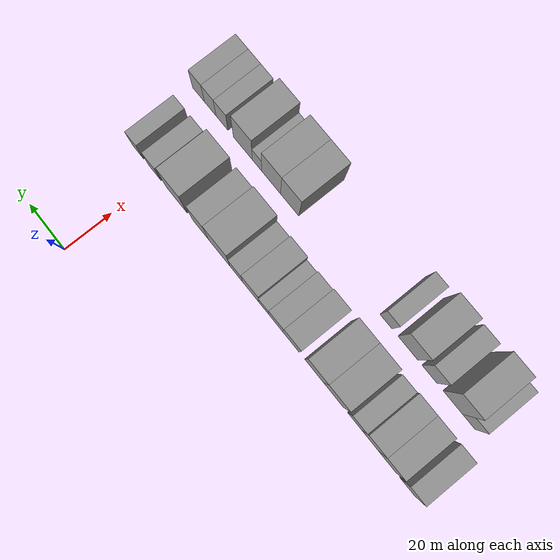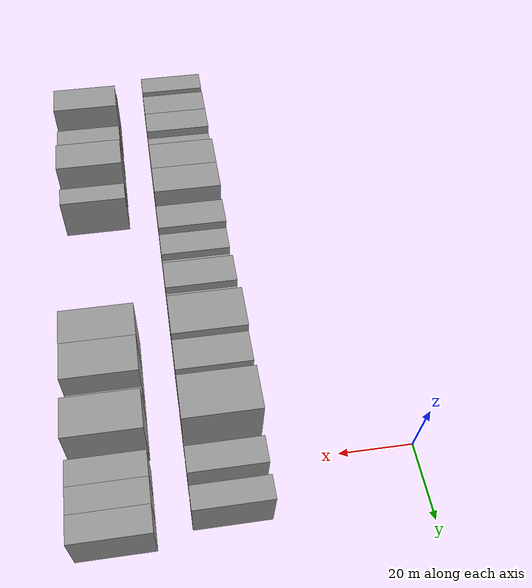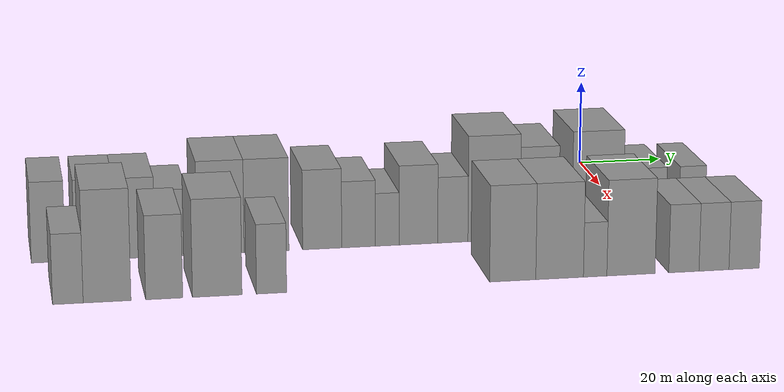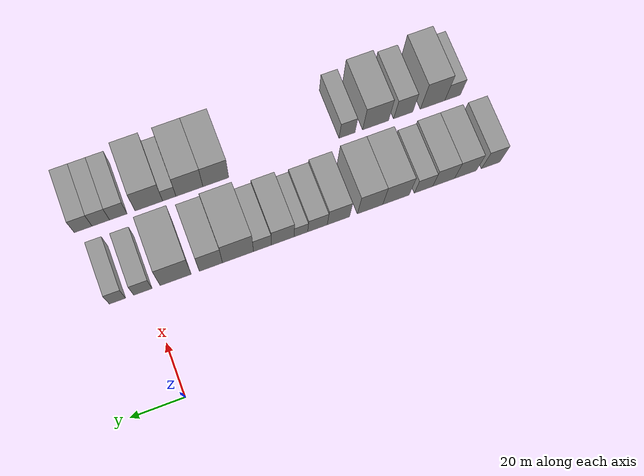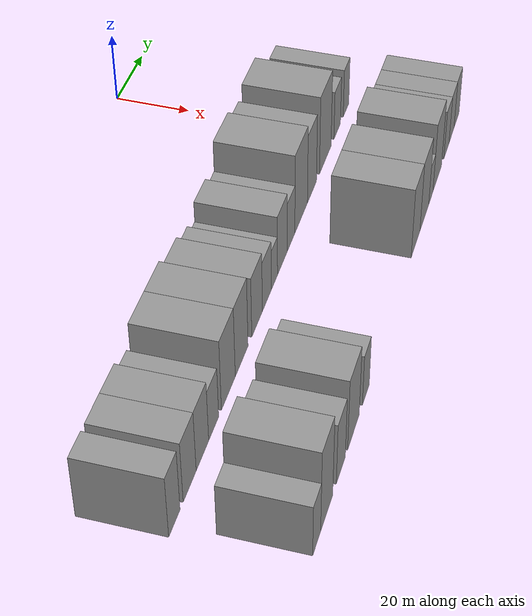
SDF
<sdf version="1.6">
 <world name="default">
  <model name="building_12">
   <static>1</static>
   <pose>50.0000 -131.5599 0 0.000000 0.000000 0.000000</pose>
   <link name="link">
    <pose>0 0 9.00 0 0 0</pose>
    <collision name="collision"><geometry><box><size>20.0000 7.2720 18.0000</size></box></geometry></collision>
    <visual name="visual">
     <cast_shadows>0</cast_shadows>
     <geometry><box><size>20.0000 7.2720 18.0000</size></box></geometry>
     <material>
      <script>
       <uri>model://grey_wall/materials/scripts</uri>
       <uri>model://grey_wall/materials/textures</uri>
       <name>vrc/grey_wall</name>
      </script>
     </material>
    </visual>
   </link>
  </model>
  <model name="building_13">
   <static>1</static>
   <pose>50.0000 -121.6003 0 0.000000 0.000000 0.000000</pose>
   <link name="link">
    <pose>0 0 9.00 0 0 0</pose>
    <collision name="collision"><geometry><box><size>20.0000 8.6473 18.0000</size></box></geometry></collision>
    <visual name="visual">
     <cast_shadows>0</cast_shadows>
     <geometry><box><size>20.0000 8.6473 18.0000</size></box></geometry>
     <material>
      <script>
       <uri>model://grey_wall/materials/scripts</uri>
       <uri>model://grey_wall/materials/textures</uri>
       <name>vrc/grey_wall</name>
      </script>
     </material>
    </visual>
   </link>
  </model>
  <model name="building_14">
   <static>1</static>
   <pose>50.0000 -112.9664 0 0.000000 0.000000 0.000000</pose>
   <link name="link">
    <pose>0 0 9.00 0 0 0</pose>
    <collision name="collision"><geometry><box><size>20.0000 8.6204 18.0000</size></box></geometry></collision>
    <visual name="visual">
     <cast_shadows>0</cast_shadows>
     <geometry><box><size>20.0000 8.6204 18.0000</size></box></geometry>
     <material>
      <script>
       <uri>model://grey_wall/materials/scripts</uri>
       <uri>model://grey_wall/materials/textures</uri>
       <name>vrc/grey_wall</name>
      </script>
     </material>
    </visual>
   </link>
  </model>
  <model name="building_15">
   <static>1</static>
   <pose>50.0000 -105.1115 0 0.000000 0.000000 0.000000</pose>
   <link name="link">
    <pose>0 0 7.50 0 0 0</pose>
    <collision name="collision"><geometry><box><size>20.0000 7.0894 15.0000</size></box></geometry></collision>
    <visual name="visual">
     <cast_shadows>0</cast_shadows>
     <geometry><box><size>20.0000 7.0894 15.0000</size></box></geometry>
     <material>
      <script>
       <uri>model://grey_wall/materials/scripts</uri>
       <uri>model://grey_wall/materials/textures</uri>
       <name>vrc/grey_wall</name>
      </script>
     </material>
    </visual>
   </link>
  </model>
  <model name="building_16">
   <static>1</static>
   <pose>50.0000 -94.4157 0 0.000000 0.000000 0.000000</pose>
   <link name="link">
    <pose>0 0 10.50 0 0 0</pose>
    <collision name="collision"><geometry><box><size>20.0000 10.3022 21.0000</size></box></geometry></collision>
    <visual name="visual">
     <cast_shadows>0</cast_shadows>
     <geometry><box><size>20.0000 10.3022 21.0000</size></box></geometry>
     <material>
      <script>
       <uri>model://grey_wall/materials/scripts</uri>
       <uri>model://grey_wall/materials/textures</uri>
       <name>vrc/grey_wall</name>
      </script>
     </material>
    </visual>
   </link>
  </model>
  <model name="building_17">
   <static>1</static>
   <pose>50.0000 -84.3508 0 0.000000 0.000000 0.000000</pose>
   <link name="link">
    <pose>0 0 10.50 0 0 0</pose>
    <collision name="collision"><geometry><box><size>20.0000 9.8277 21.0000</size></box></geometry></collision>
    <visual name="visual">
     <cast_shadows>0</cast_shadows>
     <geometry><box><size>20.0000 9.8277 21.0000</size></box></geometry>
     <material>
      <script>
       <uri>model://grey_wall/materials/scripts</uri>
       <uri>model://grey_wall/materials/textures</uri>
       <name>vrc/grey_wall</name>
      </script>
     </material>
    </visual>
   </link>
  </model>
  <model name="building_18">
   <static>1</static>
   <pose>50.0000 -72.1331 0 0.000000 0.000000 0.000000</pose>
   <link name="link">
    <pose>0 0 9.00 0 0 0</pose>
    <collision name="collision"><geometry><box><size>20.0000 8.6077 18.0000</size></box></geometry></collision>
    <visual name="visual">
     <cast_shadows>0</cast_shadows>
     <geometry><box><size>20.0000 8.6077 18.0000</size></box></geometry>
     <material>
      <script>
       <uri>model://grey_wall/materials/scripts</uri>
       <uri>model://grey_wall/materials/textures</uri>
       <name>vrc/grey_wall</name>
      </script>
     </material>
    </visual>
   </link>
  </model>
  <model name="building_19">
   <static>1</static>
   <pose>50.0000 -64.0873 0 0.000000 0.000000 0.000000</pose>
   <link name="link">
    <pose>0 0 7.50 0 0 0</pose>
    <collision name="collision"><geometry><box><size>20.0000 7.4838 15.0000</size></box></geometry></collision>
    <visual name="visual">
     <cast_shadows>0</cast_shadows>
     <geometry><box><size>20.0000 7.4838 15.0000</size></box></geometry>
     <material>
      <script>
       <uri>model://grey_wall/materials/scripts</uri>
       <uri>model://grey_wall/materials/textures</uri>
       <name>vrc/grey_wall</name>
      </script>
     </material>
    </visual>
   </link>
  </model>
  <model name="building_20">
   <static>1</static>
   <pose>50.0000 -57.7232 0 0.000000 0.000000 0.000000</pose>
   <link name="link">
    <pose>0 0 6.00 0 0 0</pose>
    <collision name="collision"><geometry><box><size>20.0000 5.2445 12.0000</size></box></geometry></collision>
    <visual name="visual">
     <cast_shadows>0</cast_shadows>
     <geometry><box><size>20.0000 5.2445 12.0000</size></box></geometry>
     <material>
      <script>
       <uri>model://grey_wall/materials/scripts</uri>
       <uri>model://grey_wall/materials/textures</uri>
       <name>vrc/grey_wall</name>
      </script>
     </material>
    </visual>
   </link>
  </model>
  <model name="building_21">
   <static>1</static>
   <pose>50.0000 -50.7852 0 0.000000 0.000000 0.000000</pose>
   <link name="link">
    <pose>0 0 9.00 0 0 0</pose>
    <collision name="collision"><geometry><box><size>20.0000 8.6315 18.0000</size></box></geometry></collision>
    <visual name="visual">
     <cast_shadows>0</cast_shadows>
     <geometry><box><size>20.0000 8.6315 18.0000</size></box></geometry>
     <material>
      <script>
       <uri>model://grey_wall/materials/scripts</uri>
       <uri>model://grey_wall/materials/textures</uri>
       <name>vrc/grey_wall</name>
      </script>
     </material>
    </visual>
   </link>
  </model>
  <model name="building_22">
   <static>1</static>
   <pose>50.0000 -43.0799 0 0.000000 0.000000 0.000000</pose>
   <link name="link">
    <pose>0 0 7.50 0 0 0</pose>
    <collision name="collision"><geometry><box><size>20.0000 6.7789 15.0000</size></box></geometry></collision>
    <visual name="visual">
     <cast_shadows>0</cast_shadows>
     <geometry><box><size>20.0000 6.7789 15.0000</size></box></geometry>
     <material>
      <script>
       <uri>model://grey_wall/materials/scripts</uri>
       <uri>model://grey_wall/materials/textures</uri>
       <name>vrc/grey_wall</name>
      </script>
     </material>
    </visual>
   </link>
  </model>
  <model name="building_23">
   <static>1</static>
   <pose>50.0000 -33.8264 0 0.000000 0.000000 0.000000</pose>
   <link name="link">
    <pose>0 0 12.00 0 0 0</pose>
    <collision name="collision"><geometry><box><size>20.0000 11.7282 24.0000</size></box></geometry></collision>
    <visual name="visual">
     <cast_shadows>0</cast_shadows>
     <geometry><box><size>20.0000 11.7282 24.0000</size></box></geometry>
     <material>
      <script>
       <uri>model://grey_wall/materials/scripts</uri>
       <uri>model://grey_wall/materials/textures</uri>
       <name>vrc/grey_wall</name>
      </script>
     </material>
    </visual>
   </link>
  </model>
  <model name="building_24">
   <static>1</static>
   <pose>50.0000 -23.6046 0 0.000000 0.000000 0.000000</pose>
   <link name="link">
    <pose>0 0 10.50 0 0 0</pose>
    <collision name="collision"><geometry><box><size>20.0000 8.7154 21.0000</size></box></geometry></collision>
    <visual name="visual">
     <cast_shadows>0</cast_shadows>
     <geometry><box><size>20.0000 8.7154 21.0000</size></box></geometry>
     <material>
      <script>
       <uri>model://grey_wall/materials/scripts</uri>
       <uri>model://grey_wall/materials/textures</uri>
       <name>vrc/grey_wall</name>
      </script>
     </material>
    </visual>
   </link>
  </model>
  <model name="building_25">
   <static>1</static>
   <pose>50.0000 -10.4218 0 0.000000 0.000000 0.000000</pose>
   <link name="link">
    <pose>0 0 12.00 0 0 0</pose>
    <collision name="collision"><geometry><box><size>20.0000 11.6502 24.0000</size></box></geometry></collision>
    <visual name="visual">
     <cast_shadows>0</cast_shadows>
     <geometry><box><size>20.0000 11.6502 24.0000</size></box></geometry>
     <material>
      <script>
       <uri>model://grey_wall/materials/scripts</uri>
       <uri>model://grey_wall/materials/textures</uri>
       <name>vrc/grey_wall</name>
      </script>
     </material>
    </visual>
   </link>
  </model>
  <model name="building_26">
   <static>1</static>
   <pose>50.0000 1.8205 0 0.000000 0.000000 0.000000</pose>
   <link name="link">
    <pose>0 0 7.50 0 0 0</pose>
    <collision name="collision"><geometry><box><size>20.0000 6.8344 15.0000</size></box></geometry></collision>
    <visual name="visual">
     <cast_shadows>0</cast_shadows>
     <geometry><box><size>20.0000 6.8344 15.0000</size></box></geometry>
     <material>
      <script>
       <uri>model://grey_wall/materials/scripts</uri>
       <uri>model://grey_wall/materials/textures</uri>
       <name>vrc/grey_wall</name>
      </script>
     </material>
    </visual>
   </link>
  </model>
  <model name="building_27">
   <static>1</static>
   <pose>50.0000 11.2494 0 0.000000 0.000000 0.000000</pose>
   <link name="link">
    <pose>0 0 7.50 0 0 0</pose>
    <collision name="collision"><geometry><box><size>20.0000 6.0233 15.0000</size></box></geometry></collision>
    <visual name="visual">
     <cast_shadows>0</cast_shadows>
     <geometry><box><size>20.0000 6.0233 15.0000</size></box></geometry>
     <material>
      <script>
       <uri>model://grey_wall/materials/scripts</uri>
       <uri>model://grey_wall/materials/textures</uri>
       <name>vrc/grey_wall</name>
      </script>
     </material>
    </visual>
   </link>
  </model>
  <model name="building_73">
   <static>1</static>
   <pose>79.0000 -128.7778 0 0.000000 0.000000 0.000000</pose>
   <link name="link">
    <pose>0 0 7.50 0 0 0</pose>
    <collision name="collision"><geometry><box><size>20.0000 6.2293 15.0000</size></box></geometry></collision>
    <visual name="visual">
     <cast_shadows>0</cast_shadows>
     <geometry><box><size>20.0000 6.2293 15.0000</size></box></geometry>
     <material>
      <script>
       <uri>model://grey_wall/materials/scripts</uri>
       <uri>model://grey_wall/materials/textures</uri>
       <name>vrc/grey_wall</name>
      </script>
     </material>
    </visual>
   </link>
  </model>
  <model name="building_74">
   <static>1</static>
   <pose>79.0000 -120.7708 0 0.000000 0.000000 0.000000</pose>
   <link name="link">
    <pose>0 0 12.00 0 0 0</pose>
    <collision name="collision"><geometry><box><size>20.0000 9.7848 24.0000</size></box></geometry></collision>
    <visual name="visual">
     <cast_shadows>0</cast_shadows>
     <geometry><box><size>20.0000 9.7848 24.0000</size></box></geometry>
     <material>
      <script>
       <uri>model://grey_wall/materials/scripts</uri>
       <uri>model://grey_wall/materials/textures</uri>
       <name>vrc/grey_wall</name>
      </script>
     </material>
    </visual>
   </link>
  </model>
  <model name="building_75">
   <static>1</static>
   <pose>79.0000 -109.0560 0 0.000000 0.000000 0.000000</pose>
   <link name="link">
    <pose>0 0 9.00 0 0 0</pose>
    <collision name="collision"><geometry><box><size>20.0000 7.6449 18.0000</size></box></geometry></collision>
    <visual name="visual">
     <cast_shadows>0</cast_shadows>
     <geometry><box><size>20.0000 7.6449 18.0000</size></box></geometry>
     <material>
      <script>
       <uri>model://grey_wall/materials/scripts</uri>
       <uri>model://grey_wall/materials/textures</uri>
       <name>vrc/grey_wall</name>
      </script>
     </material>
    </visual>
   </link>
  </model>
  <model name="building_76">
   <static>1</static>
   <pose>79.0000 -98.1008 0 0.000000 0.000000 0.000000</pose>
   <link name="link">
    <pose>0 0 10.50 0 0 0</pose>
    <collision name="collision"><geometry><box><size>20.0000 10.2655 21.0000</size></box></geometry></collision>
    <visual name="visual">
     <cast_shadows>0</cast_shadows>
     <geometry><box><size>20.0000 10.2655 21.0000</size></box></geometry>
     <material>
      <script>
       <uri>model://grey_wall/materials/scripts</uri>
       <uri>model://grey_wall/materials/textures</uri>
       <name>vrc/grey_wall</name>
      </script>
     </material>
    </visual>
   </link>
  </model>
  <model name="building_77">
   <static>1</static>
   <pose>79.0000 -86.8222 0 0.000000 0.000000 0.000000</pose>
   <link name="link">
    <pose>0 0 7.50 0 0 0</pose>
    <collision name="collision"><geometry><box><size>20.0000 6.2918 15.0000</size></box></geometry></collision>
    <visual name="visual">
     <cast_shadows>0</cast_shadows>
     <geometry><box><size>20.0000 6.2918 15.0000</size></box></geometry>
     <material>
      <script>
       <uri>model://grey_wall/materials/scripts</uri>
       <uri>model://grey_wall/materials/textures</uri>
       <name>vrc/grey_wall</name>
      </script>
     </material>
    </visual>
   </link>
  </model>
  <model name="building_78">
   <static>1</static>
   <pose>79.0000 -35.7959 0 0.000000 0.000000 0.000000</pose>
   <link name="link">
    <pose>0 0 10.50 0 0 0</pose>
    <collision name="collision"><geometry><box><size>20.0000 9.9203 21.0000</size></box></geometry></collision>
    <visual name="visual">
     <cast_shadows>0</cast_shadows>
     <geometry><box><size>20.0000 9.9203 21.0000</size></box></geometry>
     <material>
      <script>
       <uri>model://grey_wall/materials/scripts</uri>
       <uri>model://grey_wall/materials/textures</uri>
       <name>vrc/grey_wall</name>
      </script>
     </material>
    </visual>
   </link>
  </model>
  <model name="building_79">
   <static>1</static>
   <pose>79.0000 -25.6920 0 0.000000 0.000000 0.000000</pose>
   <link name="link">
    <pose>0 0 10.50 0 0 0</pose>
    <collision name="collision"><geometry><box><size>20.0000 10.2874 21.0000</size></box></geometry></collision>
    <visual name="visual">
     <cast_shadows>0</cast_shadows>
     <geometry><box><size>20.0000 10.2874 21.0000</size></box></geometry>
     <material>
      <script>
       <uri>model://grey_wall/materials/scripts</uri>
       <uri>model://grey_wall/materials/textures</uri>
       <name>vrc/grey_wall</name>
      </script>
     </material>
    </visual>
   </link>
  </model>
  <model name="building_80">
   <static>1</static>
   <pose>79.0000 -18.0083 0 0.000000 0.000000 0.000000</pose>
   <link name="link">
    <pose>0 0 6.00 0 0 0</pose>
    <collision name="collision"><geometry><box><size>20.0000 5.0801 12.0000</size></box></geometry></collision>
    <visual name="visual">
     <cast_shadows>0</cast_shadows>
     <geometry><box><size>20.0000 5.0801 12.0000</size></box></geometry>
     <material>
      <script>
       <uri>model://grey_wall/materials/scripts</uri>
       <uri>model://grey_wall/materials/textures</uri>
       <name>vrc/grey_wall</name>
      </script>
     </material>
    </visual>
   </link>
  </model>
  <model name="building_81">
   <static>1</static>
   <pose>79.0000 -10.2196 0 0.000000 0.000000 0.000000</pose>
   <link name="link">
    <pose>0 0 10.50 0 0 0</pose>
    <collision name="collision"><geometry><box><size>20.0000 10.4972 21.0000</size></box></geometry></collision>
    <visual name="visual">
     <cast_shadows>0</cast_shadows>
     <geometry><box><size>20.0000 10.4972 21.0000</size></box></geometry>
     <material>
      <script>
       <uri>model://grey_wall/materials/scripts</uri>
       <uri>model://grey_wall/materials/textures</uri>
       <name>vrc/grey_wall</name>
      </script>
     </material>
    </visual>
   </link>
  </model>
  <model name="building_82">
   <static>1</static>
   <pose>79.0000 1.3458 0 0.000000 0.000000 0.000000</pose>
   <link name="link">
    <pose>0 0 7.50 0 0 0</pose>
    <collision name="collision"><geometry><box><size>20.0000 6.6337 15.0000</size></box></geometry></collision>
    <visual name="visual">
     <cast_shadows>0</cast_shadows>
     <geometry><box><size>20.0000 6.6337 15.0000</size></box></geometry>
     <material>
      <script>
       <uri>model://grey_wall/materials/scripts</uri>
       <uri>model://grey_wall/materials/textures</uri>
       <name>vrc/grey_wall</name>
      </script>
     </material>
    </visual>
   </link>
  </model>
  <model name="building_83">
   <static>1</static>
   <pose>79.0000 7.9566 0 0.000000 0.000000 0.000000</pose>
   <link name="link">
    <pose>0 0 7.50 0 0 0</pose>
    <collision name="collision"><geometry><box><size>20.0000 6.5879 15.0000</size></box></geometry></collision>
    <visual name="visual">
     <cast_shadows>0</cast_shadows>
     <geometry><box><size>20.0000 6.5879 15.0000</size></box></geometry>
     <material>
      <script>
       <uri>model://grey_wall/materials/scripts</uri>
       <uri>model://grey_wall/materials/textures</uri>
       <name>vrc/grey_wall</name>
      </script>
     </material>
    </visual>
   </link>
  </model>
  <model name="building_84">
   <static>1</static>
   <pose>79.0000 14.6105 0 0.000000 0.000000 0.000000</pose>
   <link name="link">
    <pose>0 0 7.50 0 0 0</pose>
    <collision name="collision"><geometry><box><size>20.0000 6.7198 15.0000</size></box></geometry></collision>
    <visual name="visual">
     <cast_shadows>0</cast_shadows>
     <geometry><box><size>20.0000 6.7198 15.0000</size></box></geometry>
     <material>
      <script>
       <uri>model://grey_wall/materials/scripts</uri>
       <uri>model://grey_wall/materials/textures</uri>
       <name>vrc/grey_wall</name>
      </script>
     </material>
    </visual>
   </link>
  </model>
 </world>
</sdf>
